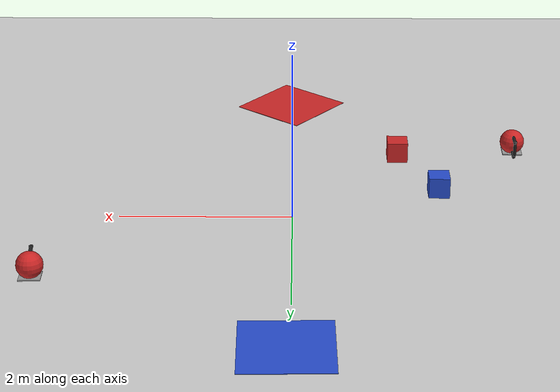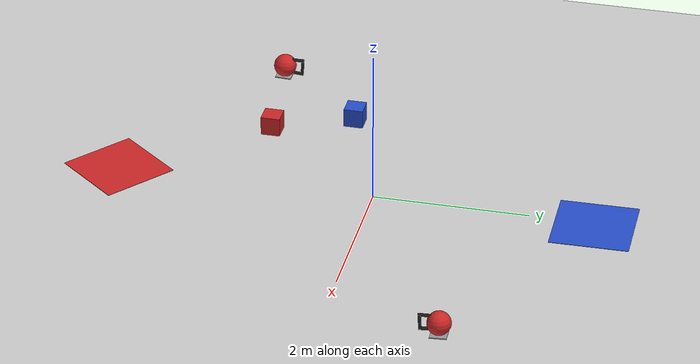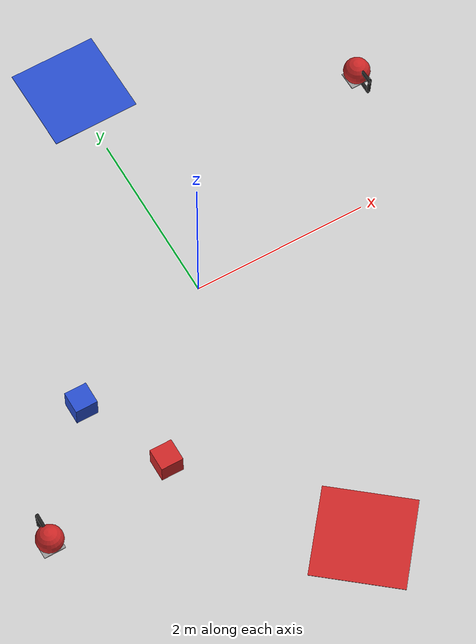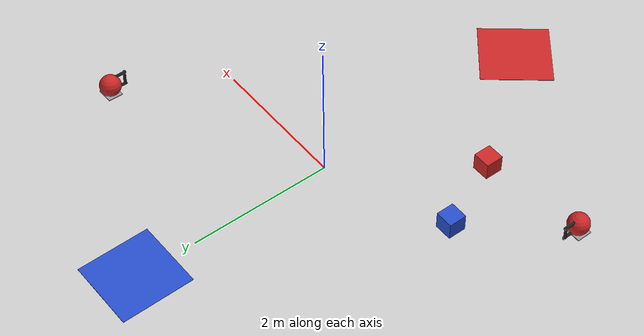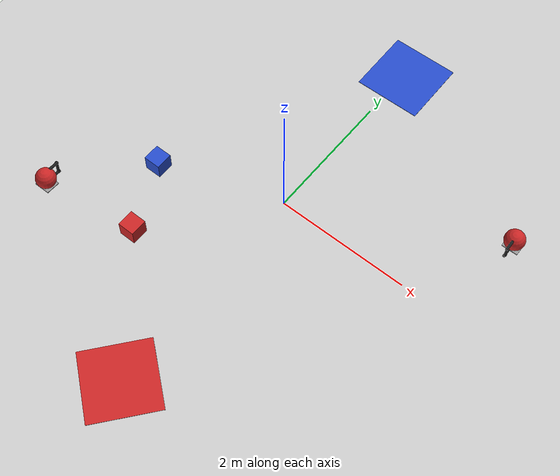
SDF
<sdf version="1.7">
 <world name="default">
  <light name="sun" type="directional">
   <pose>0 0 10 0 -0 0</pose>
   <diffuse>0.8 0.8 0.8 1</diffuse>
   <specular>0.2 0.2 0.2 1</specular>
   <attenuation>
    <range>1000</range>
    <constant>0.9</constant>
    <linear>0.01</linear>
    <quadratic>0.001</quadratic>
   </attenuation>
   <direction>-0.5 0.1 -0.9</direction>
   <spot><inner_angle>0</inner_angle><outer_angle>0</outer_angle><falloff>0</falloff></spot>
  </light>
  <model name="ground_plane">
   <static>1</static>
   <link name="link">
    <collision name="collision">
     <geometry><plane><normal>0 0 1</normal><size>100 100</size></plane></geometry>
     <surface>
      <contact><collide_bitmask>65535</collide_bitmask></contact>
      <friction><ode><mu>100</mu><mu2>50</mu2></ode></friction>
     </surface>
    </collision>
    <visual name="visual">
     <cast_shadows>0</cast_shadows>
     <geometry><plane><normal>0 0 1</normal><size>100 100</size></plane></geometry>
     <material>
      <script><uri>file://media/materials/scripts/gazebo.material</uri><name>Gazebo/Grey</name></script>
     </material>
    </visual>
   </link>
  </model>
  <gravity>0 0 -9.8</gravity>
  <magnetic_field>6e-06 2.3e-05 -4.2e-05</magnetic_field>
  <atmosphere type="adiabatic"/>
  <physics type="ode">
   <max_step_size>0.001</max_step_size>
   <real_time_factor>1</real_time_factor>
   <real_time_update_rate>1000</real_time_update_rate>
  </physics>
  <scene><ambient>0.4 0.4 0.4 1</ambient><background>0.7 0.7 0.7 1</background><shadows>1</shadows></scene>
  <spherical_coordinates>
   <surface_model>EARTH_WGS84</surface_model>
   <latitude_deg>0</latitude_deg>
   <longitude_deg>0</longitude_deg>
   <elevation>0</elevation>
   <heading_deg>0</heading_deg>
  </spherical_coordinates>
  <model name="bluecube">
   <link name="link_0">
    <inertial>
     <mass>0.05</mass>
     <inertia>
      <ixx>0.00833333</ixx>
      <ixy>0</ixy>
      <ixz>0</ixz>
      <iyy>0.00833333</iyy>
      <iyz>0</iyz>
      <izz>0.00833333</izz>
     </inertia>
    </inertial>
    <visual name="visual">
     <geometry><box><size>0.25 0.25 0.25</size></box></geometry>
     <material>
      <lighting>1</lighting>
      <script><uri>file://media/materials/scripts/gazebo.material</uri><name>Gazebo/Blue</name></script>
      <shader type="pixel"><normal_map>__default__</normal_map></shader>
      <ambient>0 0 1 1</ambient>
      <diffuse>0 0 1 1</diffuse>
      <specular>0.1 0.1 0.1 1</specular>
      <emissive>0 0 0 1</emissive>
     </material>
    </visual>
    <collision name="collision">
     <geometry><box><size>0.25 0.25 0.25</size></box></geometry>
     <surface>
      <friction>
       <ode><mu>0.1</mu><mu2>0.1</mu2><fdir1>0 0 0</fdir1><slip1>0</slip1><slip2>0</slip2></ode>
       <torsional>
        <coefficient>1</coefficient>
        <patch_radius>0</patch_radius>
        <surface_radius>0</surface_radius>
        <use_patch_radius>1</use_patch_radius>
        <ode><slip>0</slip></ode>
       </torsional>
      </friction>
      <bounce><restitution_coefficient>0</restitution_coefficient><threshold>1e+06</threshold></bounce>
      <contact>
       <collide_without_contact>0</collide_without_contact>
       <collide_without_contact_bitmask>1</collide_without_contact_bitmask>
       <collide_bitmask>1</collide_bitmask>
       <ode>
        <soft_cfm>0</soft_cfm>
        <soft_erp>0.2</soft_erp>
        <kp>1e+13</kp>
        <kd>1</kd>
        <max_vel>0.01</max_vel>
        <min_depth>0</min_depth>
       </ode>
       <bullet>
        <split_impulse>1</split_impulse>
        <split_impulse_penetration_threshold>-0.01</split_impulse_penetration_threshold>
        <soft_cfm>0</soft_cfm>
        <soft_erp>0.2</soft_erp>
        <kp>1e+13</kp>
        <kd>1</kd>
       </bullet>
      </contact>
     </surface>
    </collision>
   </link>
   <static>0</static>
   <pose>-1.73816 -0.627549 0.125 0 -0 0.001127</pose>
  </model>
  <model name="redcube">
   <link name="link_0">
    <inertial>
     <mass>0.05</mass>
     <inertia>
      <ixx>0.00833333</ixx>
      <ixy>0</ixy>
      <ixz>0</ixz>
      <iyy>0.00833333</iyy>
      <iyz>0</iyz>
      <izz>0.00833333</izz>
     </inertia>
    </inertial>
    <visual name="visual">
     <geometry><box><size>0.25 0.25 0.25</size></box></geometry>
     <material>
      <lighting>1</lighting>
      <script><uri>file://media/materials/scripts/gazebo.material</uri><name>Gazebo/Red</name></script>
      <shader type="pixel"><normal_map>__default__</normal_map></shader>
      <ambient>1 0 0 1</ambient>
      <diffuse>1 0 0 1</diffuse>
      <specular>0.1 0.1 0.1 1</specular>
      <emissive>0 0 0 1</emissive>
     </material>
    </visual>
    <collision name="collision">
     <geometry><box><size>0.25 0.25 0.25</size></box></geometry>
     <surface>
      <friction>
       <ode><mu>0.1</mu><mu2>0.1</mu2><fdir1>0 0 0</fdir1><slip1>0</slip1><slip2>0</slip2></ode>
       <torsional>
        <coefficient>1</coefficient>
        <patch_radius>0</patch_radius>
        <surface_radius>0</surface_radius>
        <use_patch_radius>1</use_patch_radius>
        <ode><slip>0</slip></ode>
       </torsional>
      </friction>
      <bounce><restitution_coefficient>0</restitution_coefficient><threshold>1e+06</threshold></bounce>
      <contact>
       <collide_without_contact>0</collide_without_contact>
       <collide_without_contact_bitmask>1</collide_without_contact_bitmask>
       <collide_bitmask>1</collide_bitmask>
       <ode>
        <soft_cfm>0</soft_cfm>
        <soft_erp>0.2</soft_erp>
        <kp>1e+13</kp>
        <kd>1</kd>
        <max_vel>0.01</max_vel>
        <min_depth>0</min_depth>
       </ode>
       <bullet>
        <split_impulse>1</split_impulse>
        <split_impulse_penetration_threshold>-0.01</split_impulse_penetration_threshold>
        <soft_cfm>0</soft_cfm>
        <soft_erp>0.2</soft_erp>
        <kp>1e+13</kp>
        <kd>1</kd>
       </bullet>
      </contact>
     </surface>
    </collision>
   </link>
   <static>0</static>
   <pose>-1.29568 -1.62903 0.125 -0 -0 -0.000431</pose>
  </model>
  <model name="redsquare">
   <link name="link">
    <inertial>
     <mass>1</mass>
     <inertia>
      <ixx>0.166667</ixx>
      <ixy>0</ixy>
      <ixz>0</ixz>
      <iyy>0.166667</iyy>
      <iyz>0</iyz>
      <izz>0.166667</izz>
     </inertia>
    </inertial>
    <pose>-0.274409 0.212198 0 0 -0 0</pose>
    <visual name="visual">
     <geometry><box><size>1 1 0.005873</size></box></geometry>
     <material>
      <script><name>Gazebo/Red</name><uri>file://media/materials/scripts/gazebo.material</uri></script>
      <shader type="pixel"><normal_map>__default__</normal_map></shader>
      <ambient>1 0 0 1</ambient>
      <diffuse>1 0 0 1</diffuse>
      <specular>0.1 0.1 0.1 1</specular>
      <emissive>0 0 0 1</emissive>
     </material>
    </visual>
    <collision name="collision">
     <geometry><box><size>1 1 0.005873</size></box></geometry>
     <surface>
      <friction>
       <ode><mu>1</mu><mu2>1</mu2><fdir1>0 0 0</fdir1><slip1>0</slip1><slip2>0</slip2></ode>
       <torsional>
        <coefficient>1</coefficient>
        <patch_radius>0</patch_radius>
        <surface_radius>0</surface_radius>
        <use_patch_radius>1</use_patch_radius>
        <ode><slip>0</slip></ode>
       </torsional>
      </friction>
      <bounce><restitution_coefficient>0</restitution_coefficient><threshold>1e+06</threshold></bounce>
      <contact>
       <collide_without_contact>0</collide_without_contact>
       <collide_without_contact_bitmask>1</collide_without_contact_bitmask>
       <collide_bitmask>1</collide_bitmask>
       <ode>
        <soft_cfm>0</soft_cfm>
        <soft_erp>0.2</soft_erp>
        <kp>1e+13</kp>
        <kd>1</kd>
        <max_vel>0.01</max_vel>
        <min_depth>0</min_depth>
       </ode>
       <bullet>
        <split_impulse>1</split_impulse>
        <split_impulse_penetration_threshold>-0.01</split_impulse_penetration_threshold>
        <soft_cfm>0</soft_cfm>
        <soft_erp>0.2</soft_erp>
        <kp>1e+13</kp>
        <kd>1</kd>
       </bullet>
      </contact>
     </surface>
    </collision>
   </link>
   <static>0</static>
   <pose>0.370242 -3.24318 0.002936 0 -0 0.888682</pose>
  </model>
  <model name="bluesquare">
   <link name="link">
    <inertial>
     <mass>1</mass>
     <inertia>
      <ixx>0.166667</ixx>
      <ixy>0</ixy>
      <ixz>0</ixz>
      <iyy>0.166667</iyy>
      <iyz>0</iyz>
      <izz>0.166667</izz>
     </inertia>
    </inertial>
    <pose>-0.274409 0.212198 -0 0 -0 0</pose>
    <visual name="visual">
     <geometry><box><size>1 1 0.005873</size></box></geometry>
     <material>
      <script><name>Gazebo/Blue</name><uri>file://media/materials/scripts/gazebo.material</uri></script>
      <shader type="pixel"><normal_map>__default__</normal_map></shader>
      <ambient>0 0 1 1</ambient>
      <diffuse>0 0 1 1</diffuse>
      <specular>0.1 0.1 0.1 1</specular>
      <emissive>0 0 0 1</emissive>
     </material>
    </visual>
    <collision name="collision">
     <geometry><box><size>1 1 0.005873</size></box></geometry>
     <surface>
      <friction>
       <ode><mu>1</mu><mu2>1</mu2><fdir1>0 0 0</fdir1><slip1>0</slip1><slip2>0</slip2></ode>
       <torsional>
        <coefficient>1</coefficient>
        <patch_radius>0</patch_radius>
        <surface_radius>0</surface_radius>
        <use_patch_radius>1</use_patch_radius>
        <ode><slip>0</slip></ode>
       </torsional>
      </friction>
      <bounce><restitution_coefficient>0</restitution_coefficient><threshold>1e+06</threshold></bounce>
      <contact>
       <collide_without_contact>0</collide_without_contact>
       <collide_without_contact_bitmask>1</collide_without_contact_bitmask>
       <collide_bitmask>1</collide_bitmask>
       <ode>
        <soft_cfm>0</soft_cfm>
        <soft_erp>0.2</soft_erp>
        <kp>1e+13</kp>
        <kd>1</kd>
        <max_vel>0.01</max_vel>
        <min_depth>0</min_depth>
       </ode>
       <bullet>
        <split_impulse>1</split_impulse>
        <split_impulse_penetration_threshold>-0.01</split_impulse_penetration_threshold>
        <soft_cfm>0</soft_cfm>
        <soft_erp>0.2</soft_erp>
        <kp>1e+13</kp>
        <kd>1</kd>
       </bullet>
      </contact>
     </surface>
    </collision>
   </link>
   <static>0</static>
   <pose>0.320492 2.62101 0.002936 0 -0 0.01456</pose>
  </model>
  <model name="redkettle">
   <link name="link">
    <inertial>
     <mass>0.05</mass>
     <inertia><ixx>0.005</ixx><ixy>0</ixy><ixz>0</ixz><iyy>0.005</iyy><iyz>0</iyz><izz>0.005</izz></inertia>
    </inertial>
    <pose>0.011849 0.017279 0.039273 0 -0 0</pose>
    <visual name="visual">
     <geometry><sphere><radius>0.15</radius></sphere></geometry>
     <material>
      <script><name>Gazebo/Red</name><uri>file://media/materials/scripts/gazebo.material</uri></script>
      <shader type="pixel"><normal_map>__default__</normal_map></shader>
      <ambient>1 0 0 1</ambient>
      <diffuse>1 0 0 1</diffuse>
      <specular>0.1 0.1 0.1 1</specular>
      <emissive>0 0 0 1</emissive>
     </material>
    </visual>
    <collision name="collision">
     <geometry><sphere><radius>0.15</radius></sphere></geometry>
     <surface>
      <friction>
       <ode><mu>1</mu><mu2>1</mu2><fdir1>0 0 0</fdir1><slip1>0</slip1><slip2>0</slip2></ode>
       <torsional>
        <coefficient>1</coefficient>
        <patch_radius>0</patch_radius>
        <surface_radius>0</surface_radius>
        <use_patch_radius>1</use_patch_radius>
        <ode><slip>0</slip></ode>
       </torsional>
      </friction>
      <bounce><restitution_coefficient>0</restitution_coefficient><threshold>1e+06</threshold></bounce>
      <contact>
       <collide_without_contact>0</collide_without_contact>
       <collide_without_contact_bitmask>1</collide_without_contact_bitmask>
       <collide_bitmask>1</collide_bitmask>
       <ode>
        <soft_cfm>0</soft_cfm>
        <soft_erp>0.2</soft_erp>
        <kp>1e+13</kp>
        <kd>1</kd>
        <max_vel>0.01</max_vel>
        <min_depth>0</min_depth>
       </ode>
       <bullet>
        <split_impulse>1</split_impulse>
        <split_impulse_penetration_threshold>-0.01</split_impulse_penetration_threshold>
        <soft_cfm>0</soft_cfm>
        <soft_erp>0.2</soft_erp>
        <kp>1e+13</kp>
        <kd>1</kd>
       </bullet>
      </contact>
     </surface>
    </collision>
   </link>
   <link name="link_0">
    <inertial>
     <mass>0.0005547</mass>
     <inertia>
      <ixx>2.72e-06</ixx>
      <ixy>0</ixy>
      <ixz>0</ixz>
      <iyy>2.03e-06</iyy>
      <iyz>0</iyz>
      <izz>4.74e-06</izz>
     </inertia>
    </inertial>
    <pose>0.013014 0.011798 -0.0981 0 -0 0</pose>
    <visual name="visual">
     <geometry><box><size>0.209387 0.242127 0.013134</size></box></geometry>
     <material>
      <lighting>1</lighting>
      <script><uri>file://media/materials/scripts/gazebo.material</uri><name>Gazebo/Grey</name></script>
      <shader type="pixel"><normal_map>__default__</normal_map></shader>
      <emissive>0 0 0 1</emissive>
     </material>
    </visual>
    <collision name="collision">
     <geometry><box><size>0.209387 0.242127 0.013134</size></box></geometry>
     <surface>
      <friction>
       <ode><mu>1</mu><mu2>1</mu2><fdir1>0 0 0</fdir1><slip1>0</slip1><slip2>0</slip2></ode>
       <torsional>
        <coefficient>1</coefficient>
        <patch_radius>0</patch_radius>
        <surface_radius>0</surface_radius>
        <use_patch_radius>1</use_patch_radius>
        <ode><slip>0</slip></ode>
       </torsional>
      </friction>
      <bounce><restitution_coefficient>0</restitution_coefficient><threshold>1e+06</threshold></bounce>
      <contact>
       <collide_without_contact>0</collide_without_contact>
       <collide_without_contact_bitmask>1</collide_without_contact_bitmask>
       <collide_bitmask>1</collide_bitmask>
       <ode>
        <soft_cfm>0</soft_cfm>
        <soft_erp>0.2</soft_erp>
        <kp>1e+13</kp>
        <kd>1</kd>
        <max_vel>0.01</max_vel>
        <min_depth>0</min_depth>
       </ode>
       <bullet>
        <split_impulse>1</split_impulse>
        <split_impulse_penetration_threshold>-0.01</split_impulse_penetration_threshold>
        <soft_cfm>0</soft_cfm>
        <soft_erp>0.2</soft_erp>
        <kp>1e+13</kp>
        <kd>1</kd>
       </bullet>
      </contact>
     </surface>
    </collision>
   </link>
   <model name="tube4">
    <link name="link_0">
     <inertial>
      <mass>1e-05</mass>
      <inertia>
       <ixx>1.46e-06</ixx>
       <ixy>0</ixy>
       <ixz>0</ixz>
       <iyy>1.46e-06</iyy>
       <iyz>0</iyz>
       <izz>1.25e-06</izz>
      </inertia>
     </inertial>
     <visual name="visual">
      <geometry><cylinder><radius>0.02</radius><length>0.2</length></cylinder></geometry>
      <material>
       <lighting>1</lighting>
       <script><uri>file://media/materials/scripts/gazebo.material</uri><name>Gazebo/Black</name></script>
       <shader type="pixel"><normal_map>__default__</normal_map></shader>
       <ambient>0 0 0 1</ambient>
       <diffuse>0 0 0 1</diffuse>
       <specular>0.01 0.01 0.01 1</specular>
       <emissive>0 0 0 1</emissive>
      </material>
     </visual>
     <collision name="collision">
      <geometry><cylinder><radius>0.02</radius><length>0.2</length></cylinder></geometry>
      <surface>
       <friction>
        <ode><mu>1</mu><mu2>1</mu2><fdir1>0 0 0</fdir1><slip1>0</slip1><slip2>0</slip2></ode>
        <torsional>
         <coefficient>1</coefficient>
         <patch_radius>0</patch_radius>
         <surface_radius>0</surface_radius>
         <use_patch_radius>1</use_patch_radius>
         <ode><slip>0</slip></ode>
        </torsional>
       </friction>
       <bounce><restitution_coefficient>0</restitution_coefficient><threshold>1e+06</threshold></bounce>
       <contact>
        <collide_without_contact>0</collide_without_contact>
        <collide_without_contact_bitmask>1</collide_without_contact_bitmask>
        <collide_bitmask>1</collide_bitmask>
        <ode>
         <soft_cfm>0</soft_cfm>
         <soft_erp>0.2</soft_erp>
         <kp>1e+13</kp>
         <kd>1</kd>
         <max_vel>0.01</max_vel>
         <min_depth>0</min_depth>
        </ode>
        <bullet>
         <split_impulse>1</split_impulse>
         <split_impulse_penetration_threshold>-0.01</split_impulse_penetration_threshold>
         <soft_cfm>0</soft_cfm>
         <soft_erp>0.2</soft_erp>
         <kp>1e+13</kp>
         <kd>1</kd>
        </bullet>
       </contact>
      </surface>
     </collision>
    </link>
    <static>0</static>
    <pose>-0.13969 0.012939 0.137786 -3.14157 1.55422 -3.14157</pose>
   </model>
   <model name="tube4_0">
    <link name="link_0">
     <inertial>
      <mass>1e-05</mass>
      <inertia>
       <ixx>1.46e-06</ixx>
       <ixy>0</ixy>
       <ixz>0</ixz>
       <iyy>1.46e-06</iyy>
       <iyz>0</iyz>
       <izz>1.25e-06</izz>
      </inertia>
     </inertial>
     <visual name="visual">
      <geometry><cylinder><radius>0.02</radius><length>0.2</length></cylinder></geometry>
      <material>
       <lighting>1</lighting>
       <script><uri>file://media/materials/scripts/gazebo.material</uri><name>Gazebo/Black</name></script>
       <shader type="pixel"><normal_map>__default__</normal_map></shader>
       <ambient>0 0 0 1</ambient>
       <diffuse>0 0 0 1</diffuse>
       <specular>0.01 0.01 0.01 1</specular>
       <emissive>0 0 0 1</emissive>
      </material>
     </visual>
     <collision name="collision">
      <geometry><cylinder><radius>0.02</radius><length>0.2</length></cylinder></geometry>
      <surface>
       <friction>
        <ode><mu>1</mu><mu2>1</mu2><fdir1>0 0 0</fdir1><slip1>0</slip1><slip2>0</slip2></ode>
        <torsional>
         <coefficient>1</coefficient>
         <patch_radius>0</patch_radius>
         <surface_radius>0</surface_radius>
         <use_patch_radius>1</use_patch_radius>
         <ode><slip>0</slip></ode>
        </torsional>
       </friction>
       <bounce><restitution_coefficient>0</restitution_coefficient><threshold>1e+06</threshold></bounce>
       <contact>
        <collide_without_contact>0</collide_without_contact>
        <collide_without_contact_bitmask>1</collide_without_contact_bitmask>
        <collide_bitmask>1</collide_bitmask>
        <ode>
         <soft_cfm>0</soft_cfm>
         <soft_erp>0.2</soft_erp>
         <kp>1e+13</kp>
         <kd>1</kd>
         <max_vel>0.01</max_vel>
         <min_depth>0</min_depth>
        </ode>
        <bullet>
         <split_impulse>1</split_impulse>
         <split_impulse_penetration_threshold>-0.01</split_impulse_penetration_threshold>
         <soft_cfm>0</soft_cfm>
         <soft_erp>0.2</soft_erp>
         <kp>1e+13</kp>
         <kd>1</kd>
        </bullet>
       </contact>
      </surface>
     </collision>
    </link>
    <static>0</static>
    <pose>-0.138549 0.016465 -0.052034 3.14159 -1.53638 -3.14159</pose>
   </model>
   <model name="tube4_1">
    <link name="link_0">
     <inertial>
      <mass>1e-05</mass>
      <inertia>
       <ixx>1.46e-06</ixx>
       <ixy>0</ixy>
       <ixz>0</ixz>
       <iyy>1.46e-06</iyy>
       <iyz>0</iyz>
       <izz>1.25e-06</izz>
      </inertia>
     </inertial>
     <visual name="visual">
      <geometry><cylinder><radius>0.02</radius><length>0.2</length></cylinder></geometry>
      <material>
       <lighting>1</lighting>
       <script><uri>file://media/materials/scripts/gazebo.material</uri><name>Gazebo/Black</name></script>
       <shader type="pixel"><normal_map>__default__</normal_map></shader>
       <ambient>0 0 0 1</ambient>
       <diffuse>0 0 0 1</diffuse>
       <specular>0.01 0.01 0.01 1</specular>
       <emissive>0 0 0 1</emissive>
      </material>
     </visual>
     <collision name="collision">
      <geometry><cylinder><radius>0.02</radius><length>0.2</length></cylinder></geometry>
      <surface>
       <friction>
        <ode><mu>1</mu><mu2>1</mu2><fdir1>0 0 0</fdir1><slip1>0</slip1><slip2>0</slip2></ode>
        <torsional>
         <coefficient>1</coefficient>
         <patch_radius>0</patch_radius>
         <surface_radius>0</surface_radius>
         <use_patch_radius>1</use_patch_radius>
         <ode><slip>0</slip></ode>
        </torsional>
       </friction>
       <bounce><restitution_coefficient>0</restitution_coefficient><threshold>1e+06</threshold></bounce>
       <contact>
        <collide_without_contact>0</collide_without_contact>
        <collide_without_contact_bitmask>1</collide_without_contact_bitmask>
        <collide_bitmask>1</collide_bitmask>
        <ode>
         <soft_cfm>0</soft_cfm>
         <soft_erp>0.2</soft_erp>
         <kp>1e+13</kp>
         <kd>1</kd>
         <max_vel>0.01</max_vel>
         <min_depth>0</min_depth>
        </ode>
        <bullet>
         <split_impulse>1</split_impulse>
         <split_impulse_penetration_threshold>-0.01</split_impulse_penetration_threshold>
         <soft_cfm>0</soft_cfm>
         <soft_erp>0.2</soft_erp>
         <kp>1e+13</kp>
         <kd>1</kd>
        </bullet>
       </contact>
      </surface>
     </collision>
    </link>
    <static>0</static>
    <pose>-0.220516 0.007722 0.051985 0 -0 0</pose>
   </model>
   <joint name="link_0_JOINT_2" type="fixed">
    <parent>tube4_1::link_0</parent>
    <child>tube4::link_0</child>
    <physics>
     <ode><limit><cfm>0</cfm><erp>0.2</erp></limit><suspension><cfm>0</cfm><erp>0.2</erp></suspension></ode>
    </physics>
   </joint>
   <joint name="link_0_JOINT_3" type="fixed">
    <parent>tube4_1::link_0</parent>
    <child>tube4_0::link_0</child>
    <physics>
     <ode><limit><cfm>0</cfm><erp>0.2</erp></limit><suspension><cfm>0</cfm><erp>0.2</erp></suspension></ode>
    </physics>
   </joint>
   <joint name="link_JOINT_0_0" type="fixed">
    <parent>link</parent>
    <child>tube4::link_0</child>
    <physics>
     <ode><limit><cfm>0</cfm><erp>0.2</erp></limit><suspension><cfm>0</cfm><erp>0.2</erp></suspension></ode>
    </physics>
   </joint>
   <joint name="link_JOINT_0" type="fixed">
    <parent>link</parent>
    <child>link_0</child>
    <physics>
     <ode><limit><cfm>0</cfm><erp>0.2</erp></limit><suspension><cfm>0</cfm><erp>0.2</erp></suspension></ode>
    </physics>
   </joint>
   <joint name="link_JOINT_1" type="fixed">
    <parent>link</parent>
    <child>tube4_0::link_0</child>
    <physics>
     <ode><limit><cfm>0</cfm><erp>0.2</erp></limit><suspension><cfm>0</cfm><erp>0.2</erp></suspension></ode>
    </physics>
   </joint>
   <static>0</static>
   <pose>2.82461 1.42285 0.110012 0.01547 -0.040991 1.59682</pose>
  </model>
  <model name="bluekettle">
   <link name="link">
    <inertial>
     <mass>0.05</mass>
     <inertia><ixx>0.005</ixx><ixy>0</ixy><ixz>0</ixz><iyy>0.005</iyy><iyz>0</iyz><izz>0.005</izz></inertia>
    </inertial>
    <pose>0.011849 0.017279 0.039273 0 -0 0</pose>
    <visual name="visual">
     <geometry><sphere><radius>0.15</radius></sphere></geometry>
     <material>
      <script><name>Gazebo/Red</name><uri>file://media/materials/scripts/gazebo.material</uri></script>
      <shader type="pixel"><normal_map>__default__</normal_map></shader>
      <ambient>0 0 1 1</ambient>
      <diffuse>0 0 1 1</diffuse>
      <specular>0.1 0.1 0.1 1</specular>
      <emissive>0 0 0 1</emissive>
     </material>
    </visual>
    <collision name="collision">
     <geometry><sphere><radius>0.15</radius></sphere></geometry>
     <surface>
      <friction>
       <ode><mu>1</mu><mu2>1</mu2><fdir1>0 0 0</fdir1><slip1>0</slip1><slip2>0</slip2></ode>
       <torsional>
        <coefficient>1</coefficient>
        <patch_radius>0</patch_radius>
        <surface_radius>0</surface_radius>
        <use_patch_radius>1</use_patch_radius>
        <ode><slip>0</slip></ode>
       </torsional>
      </friction>
      <bounce><restitution_coefficient>0</restitution_coefficient><threshold>1e+06</threshold></bounce>
      <contact>
       <collide_without_contact>0</collide_without_contact>
       <collide_without_contact_bitmask>1</collide_without_contact_bitmask>
       <collide_bitmask>1</collide_bitmask>
       <ode>
        <soft_cfm>0</soft_cfm>
        <soft_erp>0.2</soft_erp>
        <kp>1e+13</kp>
        <kd>1</kd>
        <max_vel>0.01</max_vel>
        <min_depth>0</min_depth>
       </ode>
       <bullet>
        <split_impulse>1</split_impulse>
        <split_impulse_penetration_threshold>-0.01</split_impulse_penetration_threshold>
        <soft_cfm>0</soft_cfm>
        <soft_erp>0.2</soft_erp>
        <kp>1e+13</kp>
        <kd>1</kd>
       </bullet>
      </contact>
     </surface>
    </collision>
   </link>
   <link name="link_0">
    <inertial>
     <mass>0.0005547</mass>
     <inertia>
      <ixx>2.72e-06</ixx>
      <ixy>0</ixy>
      <ixz>0</ixz>
      <iyy>2.03e-06</iyy>
      <iyz>0</iyz>
      <izz>4.74e-06</izz>
     </inertia>
    </inertial>
    <pose>0.013014 0.011798 -0.0981 0 -0 0</pose>
    <visual name="visual">
     <geometry><box><size>0.209387 0.242127 0.013134</size></box></geometry>
     <material>
      <lighting>1</lighting>
      <script><uri>file://media/materials/scripts/gazebo.material</uri><name>Gazebo/Grey</name></script>
      <shader type="pixel"><normal_map>__default__</normal_map></shader>
      <emissive>0 0 0 1</emissive>
     </material>
    </visual>
    <collision name="collision">
     <geometry><box><size>0.209387 0.242127 0.013134</size></box></geometry>
     <surface>
      <friction>
       <ode><mu>1</mu><mu2>1</mu2><fdir1>0 0 0</fdir1><slip1>0</slip1><slip2>0</slip2></ode>
       <torsional>
        <coefficient>1</coefficient>
        <patch_radius>0</patch_radius>
        <surface_radius>0</surface_radius>
        <use_patch_radius>1</use_patch_radius>
        <ode><slip>0</slip></ode>
       </torsional>
      </friction>
      <bounce><restitution_coefficient>0</restitution_coefficient><threshold>1e+06</threshold></bounce>
      <contact>
       <collide_without_contact>0</collide_without_contact>
       <collide_without_contact_bitmask>1</collide_without_contact_bitmask>
       <collide_bitmask>1</collide_bitmask>
       <ode>
        <soft_cfm>0</soft_cfm>
        <soft_erp>0.2</soft_erp>
        <kp>1e+13</kp>
        <kd>1</kd>
        <max_vel>0.01</max_vel>
        <min_depth>0</min_depth>
       </ode>
       <bullet>
        <split_impulse>1</split_impulse>
        <split_impulse_penetration_threshold>-0.01</split_impulse_penetration_threshold>
        <soft_cfm>0</soft_cfm>
        <soft_erp>0.2</soft_erp>
        <kp>1e+13</kp>
        <kd>1</kd>
       </bullet>
      </contact>
     </surface>
    </collision>
   </link>
   <model name="tube4">
    <link name="link_0">
     <inertial>
      <mass>1e-05</mass>
      <inertia>
       <ixx>1.46e-06</ixx>
       <ixy>0</ixy>
       <ixz>0</ixz>
       <iyy>1.46e-06</iyy>
       <iyz>0</iyz>
       <izz>1.25e-06</izz>
      </inertia>
     </inertial>
     <visual name="visual">
      <geometry><cylinder><radius>0.02</radius><length>0.2</length></cylinder></geometry>
      <material>
       <lighting>1</lighting>
       <script><uri>file://media/materials/scripts/gazebo.material</uri><name>Gazebo/Black</name></script>
       <shader type="pixel"><normal_map>__default__</normal_map></shader>
       <ambient>0 0 0 1</ambient>
       <diffuse>0 0 0 1</diffuse>
       <specular>0.01 0.01 0.01 1</specular>
       <emissive>0 0 0 1</emissive>
      </material>
     </visual>
     <collision name="collision">
      <geometry><cylinder><radius>0.02</radius><length>0.2</length></cylinder></geometry>
      <surface>
       <friction>
        <ode><mu>1</mu><mu2>1</mu2><fdir1>0 0 0</fdir1><slip1>0</slip1><slip2>0</slip2></ode>
        <torsional>
         <coefficient>1</coefficient>
         <patch_radius>0</patch_radius>
         <surface_radius>0</surface_radius>
         <use_patch_radius>1</use_patch_radius>
         <ode><slip>0</slip></ode>
        </torsional>
       </friction>
       <bounce><restitution_coefficient>0</restitution_coefficient><threshold>1e+06</threshold></bounce>
       <contact>
        <collide_without_contact>0</collide_without_contact>
        <collide_without_contact_bitmask>1</collide_without_contact_bitmask>
        <collide_bitmask>1</collide_bitmask>
        <ode>
         <soft_cfm>0</soft_cfm>
         <soft_erp>0.2</soft_erp>
         <kp>1e+13</kp>
         <kd>1</kd>
         <max_vel>0.01</max_vel>
         <min_depth>0</min_depth>
        </ode>
        <bullet>
         <split_impulse>1</split_impulse>
         <split_impulse_penetration_threshold>-0.01</split_impulse_penetration_threshold>
         <soft_cfm>0</soft_cfm>
         <soft_erp>0.2</soft_erp>
         <kp>1e+13</kp>
         <kd>1</kd>
        </bullet>
       </contact>
      </surface>
     </collision>
    </link>
    <static>0</static>
    <pose>-0.13969 0.012939 0.137786 -3.14157 1.55422 -3.14157</pose>
   </model>
   <model name="tube4_0">
    <link name="link_0">
     <inertial>
      <mass>1e-05</mass>
      <inertia>
       <ixx>1.46e-06</ixx>
       <ixy>0</ixy>
       <ixz>0</ixz>
       <iyy>1.46e-06</iyy>
       <iyz>0</iyz>
       <izz>1.25e-06</izz>
      </inertia>
     </inertial>
     <visual name="visual">
      <geometry><cylinder><radius>0.02</radius><length>0.2</length></cylinder></geometry>
      <material>
       <lighting>1</lighting>
       <script><uri>file://media/materials/scripts/gazebo.material</uri><name>Gazebo/Black</name></script>
       <shader type="pixel"><normal_map>__default__</normal_map></shader>
       <ambient>0 0 0 1</ambient>
       <diffuse>0 0 0 1</diffuse>
       <specular>0.01 0.01 0.01 1</specular>
       <emissive>0 0 0 1</emissive>
      </material>
     </visual>
     <collision name="collision">
      <geometry><cylinder><radius>0.02</radius><length>0.2</length></cylinder></geometry>
      <surface>
       <friction>
        <ode><mu>1</mu><mu2>1</mu2><fdir1>0 0 0</fdir1><slip1>0</slip1><slip2>0</slip2></ode>
        <torsional>
         <coefficient>1</coefficient>
         <patch_radius>0</patch_radius>
         <surface_radius>0</surface_radius>
         <use_patch_radius>1</use_patch_radius>
         <ode><slip>0</slip></ode>
        </torsional>
       </friction>
       <bounce><restitution_coefficient>0</restitution_coefficient><threshold>1e+06</threshold></bounce>
       <contact>
        <collide_without_contact>0</collide_without_contact>
        <collide_without_contact_bitmask>1</collide_without_contact_bitmask>
        <collide_bitmask>1</collide_bitmask>
        <ode>
         <soft_cfm>0</soft_cfm>
         <soft_erp>0.2</soft_erp>
         <kp>1e+13</kp>
         <kd>1</kd>
         <max_vel>0.01</max_vel>
         <min_depth>0</min_depth>
        </ode>
        <bullet>
         <split_impulse>1</split_impulse>
         <split_impulse_penetration_threshold>-0.01</split_impulse_penetration_threshold>
         <soft_cfm>0</soft_cfm>
         <soft_erp>0.2</soft_erp>
         <kp>1e+13</kp>
         <kd>1</kd>
        </bullet>
       </contact>
      </surface>
     </collision>
    </link>
    <static>0</static>
    <pose>-0.138549 0.016465 -0.052034 3.14159 -1.53638 -3.14159</pose>
   </model>
   <model name="tube4_1">
    <link name="link_0">
     <inertial>
      <mass>1e-05</mass>
      <inertia>
       <ixx>1.46e-06</ixx>
       <ixy>0</ixy>
       <ixz>0</ixz>
       <iyy>1.46e-06</iyy>
       <iyz>0</iyz>
       <izz>1.25e-06</izz>
      </inertia>
     </inertial>
     <visual name="visual">
      <geometry><cylinder><radius>0.02</radius><length>0.2</length></cylinder></geometry>
      <material>
       <lighting>1</lighting>
       <script><uri>file://media/materials/scripts/gazebo.material</uri><name>Gazebo/Black</name></script>
       <shader type="pixel"><normal_map>__default__</normal_map></shader>
       <ambient>0 0 0 1</ambient>
       <diffuse>0 0 0 1</diffuse>
       <specular>0.01 0.01 0.01 1</specular>
       <emissive>0 0 0 1</emissive>
      </material>
     </visual>
     <collision name="collision">
      <geometry><cylinder><radius>0.02</radius><length>0.2</length></cylinder></geometry>
      <surface>
       <friction>
        <ode><mu>1</mu><mu2>1</mu2><fdir1>0 0 0</fdir1><slip1>0</slip1><slip2>0</slip2></ode>
        <torsional>
         <coefficient>1</coefficient>
         <patch_radius>0</patch_radius>
         <surface_radius>0</surface_radius>
         <use_patch_radius>1</use_patch_radius>
         <ode><slip>0</slip></ode>
        </torsional>
       </friction>
       <bounce><restitution_coefficient>0</restitution_coefficient><threshold>1e+06</threshold></bounce>
       <contact>
        <collide_without_contact>0</collide_without_contact>
        <collide_without_contact_bitmask>1</collide_without_contact_bitmask>
        <collide_bitmask>1</collide_bitmask>
        <ode>
         <soft_cfm>0</soft_cfm>
         <soft_erp>0.2</soft_erp>
         <kp>1e+13</kp>
         <kd>1</kd>
         <max_vel>0.01</max_vel>
         <min_depth>0</min_depth>
        </ode>
        <bullet>
         <split_impulse>1</split_impulse>
         <split_impulse_penetration_threshold>-0.01</split_impulse_penetration_threshold>
         <soft_cfm>0</soft_cfm>
         <soft_erp>0.2</soft_erp>
         <kp>1e+13</kp>
         <kd>1</kd>
        </bullet>
       </contact>
      </surface>
     </collision>
    </link>
    <static>0</static>
    <pose>-0.220516 0.007722 0.051985 0 -0 0</pose>
   </model>
   <joint name="link_JOINT_0_0" type="fixed">
    <parent>link</parent>
    <child>tube4::link_0</child>
    <physics>
     <ode><limit><cfm>0</cfm><erp>0.2</erp></limit><suspension><cfm>0</cfm><erp>0.2</erp></suspension></ode>
    </physics>
   </joint>
   <joint name="link_JOINT_0" type="fixed">
    <parent>link</parent>
    <child>link_0</child>
    <physics>
     <ode><limit><cfm>0</cfm><erp>0.2</erp></limit><suspension><cfm>0</cfm><erp>0.2</erp></suspension></ode>
    </physics>
   </joint>
   <joint name="link_JOINT_1" type="fixed">
    <parent>link</parent>
    <child>tube4_0::link_0</child>
    <physics>
     <ode><limit><cfm>0</cfm><erp>0.2</erp></limit><suspension><cfm>0</cfm><erp>0.2</erp></suspension></ode>
    </physics>
   </joint>
   <joint name="link_0_JOINT_2" type="fixed">
    <parent>tube4_1::link_0</parent>
    <child>tube4::link_0</child>
    <physics>
     <ode><limit><cfm>0</cfm><erp>0.2</erp></limit><suspension><cfm>0</cfm><erp>0.2</erp></suspension></ode>
    </physics>
   </joint>
   <joint name="link_0_JOINT_3" type="fixed">
    <parent>tube4_1::link_0</parent>
    <child>tube4_0::link_0</child>
    <physics>
     <ode><limit><cfm>0</cfm><erp>0.2</erp></limit><suspension><cfm>0</cfm><erp>0.2</erp></suspension></ode>
    </physics>
   </joint>
   <static>0</static>
   <pose>-2.76343 -1.80804 0.110012 0.015452 -0.040994 -1.57292</pose>
  </model>
 </world>
</sdf>
